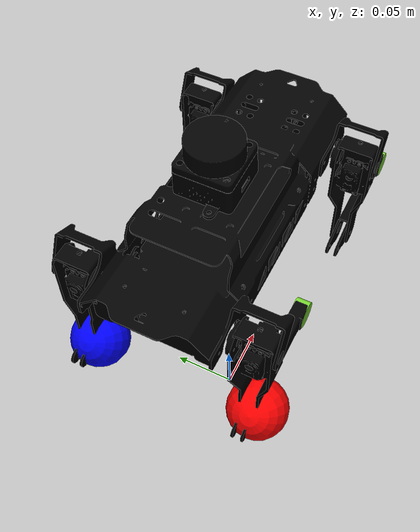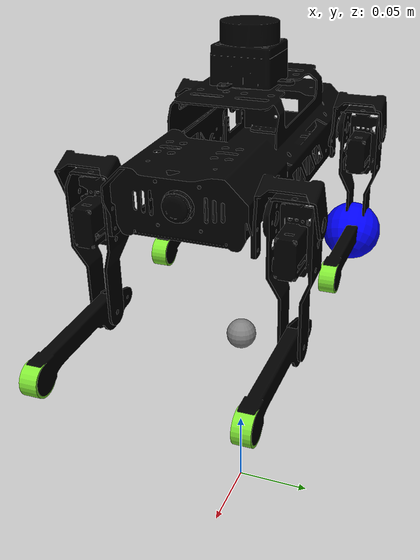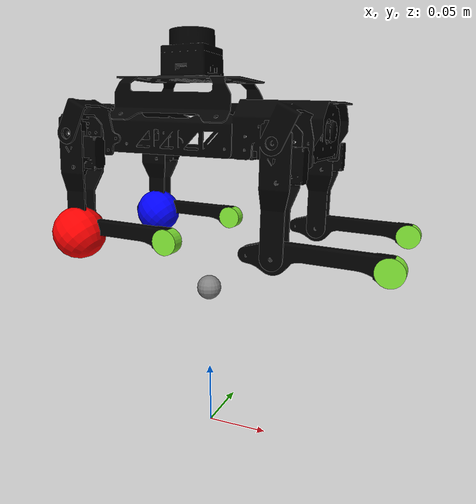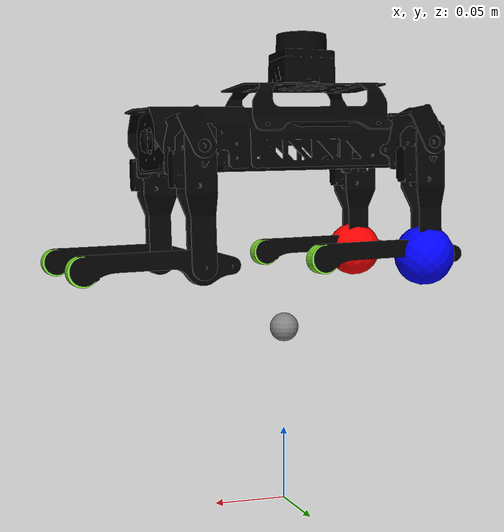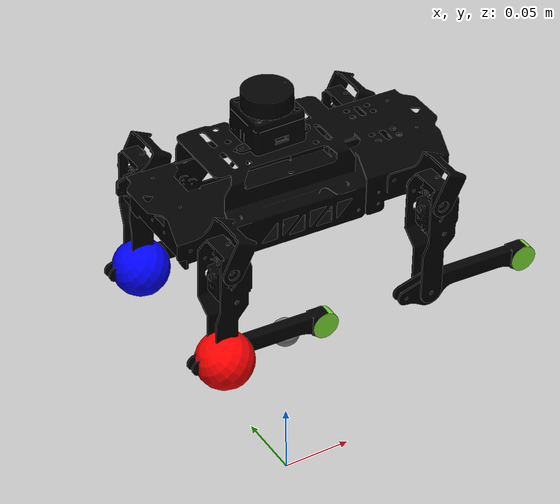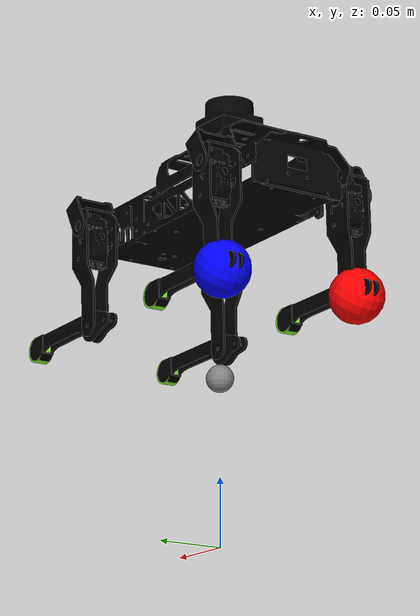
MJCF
<mujoco model="puppy">
  <option iterations="50" timestep="0.001" solver="PGS" gravity="0 0 -9.81" />

  <compiler angle="radian" meshdir="meshes" eulerseq="zyx" autolimits="true" />

  <default>
    <joint limited="true" damping="0.01" armature="0.01" frictionloss="0.01" />
    <geom condim="4" contype="1" conaffinity="15" friction="1.1 0.2 0.2" solref="0.001 2" />
    <motor ctrllimited="true" />
    <equality solref="0.001 2" />
    <default class="visualgeom">
      <geom material="visualgeom" condim="1" contype="0" conaffinity="0" />
    </default>
  </default>

    <keyframe>
    <key name="stand"
        qpos="0 0 0 1 0 0 0
              0  0  0  0  0  0  0  0"
        ctrl="0 0 0 0 0 0  0 0" />
  </keyframe>

  <asset>
    <mesh name="lidar_Link" content_type="model/stl" file="lidar_Link.STL" />
    <mesh name="base_link" content_type="model/stl" file="base_link.STL" />
    <mesh name="lb_link1" content_type="model/stl" file="lb_link1.STL" />
    <mesh name="lb_link2" content_type="model/stl" file="lb_link2.STL" />
    <mesh name="rb_link1" content_type="model/stl" file="rb_link1.STL" />
    <mesh name="rb_link2" content_type="model/stl" file="rb_link2.STL" />
    <mesh name="rf_link1" content_type="model/stl" file="rf_link1.STL" />
    <mesh name="rf_link2" content_type="model/stl" file="rf_link2.STL" />
    <mesh name="lf_link1" content_type="model/stl" file="lf_link1.STL" />
    <mesh name="lf_link2" content_type="model/stl" file="lf_link2.STL" />
    <mesh name="camera_link" content_type="model/stl" file="camera_link.STL" />
    <texture name="texplane" type="2d" builtin="checker" rgb1=".0 .0 .0" rgb2=".8 .8 .8" width="100" height="100" />
    <material name="matplane" reflectance="0." texture="texplane" texrepeat="1 1" texuniform="true" />
    <material name="visualgeom" rgba="0.5 0.9 0.2 1" />
  </asset>

  <worldbody>
    <light directional="true" diffuse="0.4 0.4 0.4" specular="0.1 0.1 0.1" pos="0 0 5.0" dir="0 0 -1" castshadow="false" />
    <light directional="true" diffuse="0.6 0.6 0.6" specular="0.2 0.2 0.2" pos="0 0 4" dir="0 0 -1" />
    <camera name="fixed" pos="0 -3.0 0.5208112658029593" xyaxes="1 0 0 0 0 1" />
    <camera name="track" mode="trackcom" pos="0 -3.0 0.5208112658029593" xyaxes="1 0 0 0 0 1" />
    <!-- x축 방향 site (빨강) -->
    <!-- y축 방향 site (녹색) -->
    <!-- z축 방향 site (파랑) -->
    <body name="root" pos="0 0 0.120811265802959306" quat="1 0 0 0">
      <freejoint name="root" />
      <site name="imu" size="0.01" pos="0 0 0" />
      <geom pos="0 0 0.11" quat="0.707388 0 0 0.706825" type="mesh" rgba="0 0 0 1" mesh="base_link" contype="1" conaffinity="0" density="0" group="1" class="visualgeom" />
      <geom type="mesh" rgba="0 0 0 1" mesh="base_link" pos="0 0 0.11" quat="0.707388 0 0 0.706825" />
      <geom pos="0.100687 -8.01795e-05 0.12711" quat="0.707285 0.0121148 0.0121051 0.706722" type="mesh" rgba="0 0 0 1" mesh="camera_link" contype="1" conaffinity="0" density="0" group="1" class="visualgeom" />
      <geom type="mesh" rgba="0 0 0 1" mesh="camera_link" pos="0.100687 -8.01795e-05 0.12711" quat="0.707285 0.0121148 0.0121051 0.706722" />
      <geom pos="-0.012242 -8.533e-05 0.202501" quat="1 0 0 0" type="mesh" rgba="0 0 0 1" mesh="lidar_Link" contype="1" conaffinity="0" density="0" group="1" class="visualgeom" />
      <geom type="mesh" rgba="0 0 0 1" mesh="lidar_Link" pos="-0.012242 -8.533e-05 0.202501" quat="1 0 0 0" />

      <body name="lb_link1" pos="-0.0778358 0.0420726 0.125988" quat="0.657971 -0.259755 -0.259548 0.657447">
        <inertial pos="0.0139911 0.0129617 -0.0150641" quat="0.681953 0.285067 -0.259509 0.621555" mass="0.0101535" diaginertia="5.0547e-06 4.74867e-06 7.53492e-07" />
        <joint name="lb_joint1" pos="0 0 0" axis="1 0 0" range="-2 2" actuatorfrcrange="-0.5 0.5" />
        <geom type="mesh" rgba="0 0 0 1" mesh="lb_link1" contype="1" conaffinity="0" density="0" group="1" class="visualgeom" />
        <geom type="mesh" rgba="0 0 0 1" mesh="lb_link1" />
        <body name="lb_link2" pos="0.0120499 0.0525236 -0.0528775">
          <inertial pos="0.000397966 -0.0498531 -0.0493138" quat="0.928207 -0.35834 0.0601905 0.0800115" mass="0.0445559" diaginertia="1.15934e-05 1.14772e-05 2.56752e-07" />
          <!--
              This joint is knee.
          -->
          <!-- lb -->
          <site name="lb" pos="0 0 0" size="0.02" rgba="0 0 1 1"/>
          <joint name="lb_joint2" pos="0 0 0" axis="1 0 0" range="-2 2" actuatorfrcrange="-0.5 0.5" />
          <geom type="mesh" rgba="0 0 0 1" mesh="lb_link2" contype="1" conaffinity="0" density="0" group="1" class="visualgeom" />
          <geom type="mesh" rgba="0 0 0 1" mesh="lb_link2" />
          <geom size="0.0095 0.005" pos="0.0032 -0.0537033 -0.0522891" quat="0.65427 0.268941 0.653749 0.268727" type="cylinder" contype="1" conaffinity="0" density="0" group="1" class="visualgeom"  friction="1.2 0.2 0.2"/>
        </body>
      </body>

      <body name="rb_link1" pos="-0.0779027 -0.0419485 0.125988" quat="0.657971 -0.259755 -0.259548 0.657447">
        <inertial pos="-0.0139912 0.0129616 -0.0150641" quat="0.621547 0.25951 -0.285066 0.681961" mass="0.0101536" diaginertia="5.05471e-06 4.74867e-06 7.53497e-07" />
        <joint name="rb_joint1" pos="0 0 0" axis="1 0 0" range="-2 2" actuatorfrcrange="-0.5 0.5" />
        <geom type="mesh" rgba="0 0 0 1" mesh="rb_link1" contype="1" conaffinity="0" density="0" group="1" class="visualgeom" />
        <geom type="mesh" rgba="0 0 0 1" mesh="rb_link1" />
        <body name="rb_link2" pos="-0.0185499 0.0525236 -0.0528775">
          <inertial pos="0.000397966 -0.0498531 -0.0493138" quat="0.928207 -0.35834 0.0601905 0.0800115" mass="0.0445559" diaginertia="1.15934e-05 1.14772e-05 2.56752e-07" />
          <!-- rb -->
          <site name="rb" pos="0 0 0" size="0.02" rgba="1 0 0 1"/>
          <joint name="rb_joint2" pos="0 0 0" axis="1 0 0" range="-2 2" actuatorfrcrange="-0.5 0.5" />
          <geom type="mesh" rgba="0 0 0 1" mesh="rb_link2" contype="1" conaffinity="0" density="0" group="1" class="visualgeom" />
          <geom type="mesh" rgba="0 0 0 1" mesh="rb_link2" />
          <geom size="0.0095 0.005" pos="0.0032 -0.0537033 -0.0522891" quat="0.65427 0.268941 0.653749 0.268727" type="cylinder" contype="1" conaffinity="0" density="0" group="1" class="visualgeom"  friction="1.2 0.2 0.2"/>
        </body>
      </body>

      <body name="rf_link1" pos="0.0778358 -0.0420725 0.120651" quat="0.657971 -0.259755 -0.259548 0.657447">
        <inertial pos="-0.0139912 0.0129616 -0.0150641" quat="0.621547 0.25951 -0.285066 0.681961" mass="0.0101536" diaginertia="5.05471e-06 4.74867e-06 7.53497e-07" />
        <joint name="rf_joint1" pos="0 0 0" axis="1 0 0" range="-2 2" actuatorfrcrange="-0.5 0.5" />
        <geom type="mesh" rgba="0 0 0 1" mesh="rf_link1" contype="1" conaffinity="0" density="0" group="1" class="visualgeom" />
        <geom type="mesh" rgba="0 0 0 1" mesh="rf_link1" />
        <body name="rf_link2" pos="-0.0185499 0.0525236 -0.0528775">
          <inertial pos="0.000397966 -0.0498531 -0.0493138" quat="0.928207 -0.35834 0.0601905 0.0800115" mass="0.0445559" diaginertia="1.15934e-05 1.14772e-05 2.56752e-07" />
           <!-- rf -->
          <joint name="rf_joint2" pos="0 0 0" axis="1 0 0" range="-2 2" actuatorfrcrange="-0.5 0.5" />
          <geom type="mesh" rgba="0 0 0 1" mesh="rf_link2" contype="1" conaffinity="0" density="0" group="1" class="visualgeom" />
          <geom type="mesh" rgba="0 0 0 1" mesh="rf_link2" />
          <geom size="0.0095 0.005" pos="0.0032 -0.0537033 -0.0522891" quat="0.65427 0.268941 0.653749 0.268727" type="cylinder" contype="1" conaffinity="0" density="0" group="1" class="visualgeom"  friction="1.2 0.2 0.2"/>
        </body>
      </body>

      <body name="lf_link1" pos="0.0779027 0.0419485 0.120651" quat="0.657971 -0.259755 -0.259548 0.657447">
        <inertial pos="0.0139911 0.0129616 -0.0150641" quat="0.681953 0.285067 -0.259509 0.621556" mass="0.0101536" diaginertia="5.05473e-06 4.74868e-06 7.53497e-07" />
        <joint name="lf_joint1" pos="0 0 0" axis="1 0 0" range="-2 2" actuatorfrcrange="-0.5 0.5" />
        <geom type="mesh" rgba="0 0 0 1" mesh="lf_link1" contype="1" conaffinity="0" density="0" group="1" class="visualgeom" />
        <geom type="mesh" rgba="0 0 0 1" mesh="lf_link1" />
        <body name="lf_link2" pos="0.0120499 0.0525236 -0.0528775">
          <inertial pos="0.000397966 -0.0498531 -0.0493138" quat="0.928207 -0.35834 0.0601905 0.0800115" mass="0.0445559" diaginertia="1.15934e-05 1.14772e-05 2.56752e-07" />
           <!-- lf -->
          <joint name="lf_joint2" pos="0 0 0" axis="1 0 0" range="-2 2" actuatorfrcrange="-0.5 0.5" />
          <geom type="mesh" rgba="0 0 0 1" mesh="lf_link2" contype="1" conaffinity="0" density="0" group="1" class="visualgeom" />
          <geom type="mesh" rgba="0 0 0 1" mesh="lf_link2" />
          <geom size="0.0095 0.005" pos="0.0032 -0.0537033 -0.0522891" quat="0.65427 0.268941 0.653749 0.268727" type="cylinder" contype="1" conaffinity="0" density="0" group="1" class="visualgeom"  friction="1.2 0.2 0.2"/>
        </body>
      </body>
    </body>
  </worldbody>

  <actuator>
    <motor name="rb_joint1" joint="rb_joint1" ctrllimited="true" ctrlrange="-0.5 0.5" gear="1" />
    <motor name="rb_joint2" joint="rb_joint2" ctrllimited="true" ctrlrange="-0.5 0.5" gear="1" />
    <motor name="lb_joint1" joint="lb_joint1" ctrllimited="true" ctrlrange="-0.5 0.5" gear="1" />
    <motor name="lb_joint2" joint="lb_joint2" ctrllimited="true" ctrlrange="-0.5 0.5" gear="1" />
    <motor name="rf_joint1" joint="rf_joint1" ctrllimited="true" ctrlrange="-0.5 0.5" gear="1" />
    <motor name="rf_joint2" joint="rf_joint2" ctrllimited="true" ctrlrange="-0.5 0.5" gear="1" />
    <motor name="lf_joint1" joint="lf_joint1" ctrllimited="true" ctrlrange="-0.5 0.5" gear="1" />
    <motor name="lf_joint2" joint="lf_joint2" ctrllimited="true" ctrlrange="-0.5 0.5" gear="1" />
  </actuator>

  <sensor>
    <actuatorpos name="rb_joint1_p" actuator="rb_joint1" />
    <actuatorvel name="rb_joint1_v" actuator="rb_joint1" />
    <actuatorfrc name="rb_joint1_f" actuator="rb_joint1" noise="0.001" />
    <actuatorpos name="rb_joint2_p" actuator="rb_joint2" />
    <actuatorvel name="rb_joint2_v" actuator="rb_joint2" />
    <actuatorfrc name="rb_joint2_f" actuator="rb_joint2" noise="0.001" />
    <actuatorpos name="lb_joint1_p" actuator="lb_joint1" />
    <actuatorvel name="lb_joint1_v" actuator="lb_joint1" />
    <actuatorfrc name="lb_joint1_f" actuator="lb_joint1" noise="0.001" />
    <actuatorpos name="lb_joint2_p" actuator="lb_joint2" />
    <actuatorvel name="lb_joint2_v" actuator="lb_joint2" />
    <actuatorfrc name="lb_joint2_f" actuator="lb_joint2" noise="0.001" />
    <actuatorpos name="rf_joint1_p" actuator="rf_joint1" />
    <actuatorvel name="rf_joint1_v" actuator="rf_joint1" />
    <actuatorfrc name="rf_joint1_f" actuator="rf_joint1" noise="0.001" />
    <actuatorpos name="rf_joint2_p" actuator="rf_joint2" />
    <actuatorvel name="rf_joint2_v" actuator="rf_joint2" />
    <actuatorfrc name="rf_joint2_f" actuator="rf_joint2" noise="0.001" />
    <actuatorpos name="lf_joint1_p" actuator="lf_joint1" />
    <actuatorvel name="lf_joint1_v" actuator="lf_joint1" />
    <actuatorfrc name="lf_joint1_f" actuator="lf_joint1" noise="0.001" />
    <actuatorpos name="lf_joint2_p" actuator="lf_joint2" />
    <actuatorvel name="lf_joint2_v" actuator="lf_joint2" />
    <actuatorfrc name="lf_joint2_f" actuator="lf_joint2" noise="0.001" />
    <framequat name="orientation" objtype="site" noise="0.001" objname="imu" />
    <gyro name="angular-velocity" site="imu" noise="0.005" cutoff="34.9" />
  </sensor>

</mujoco>
